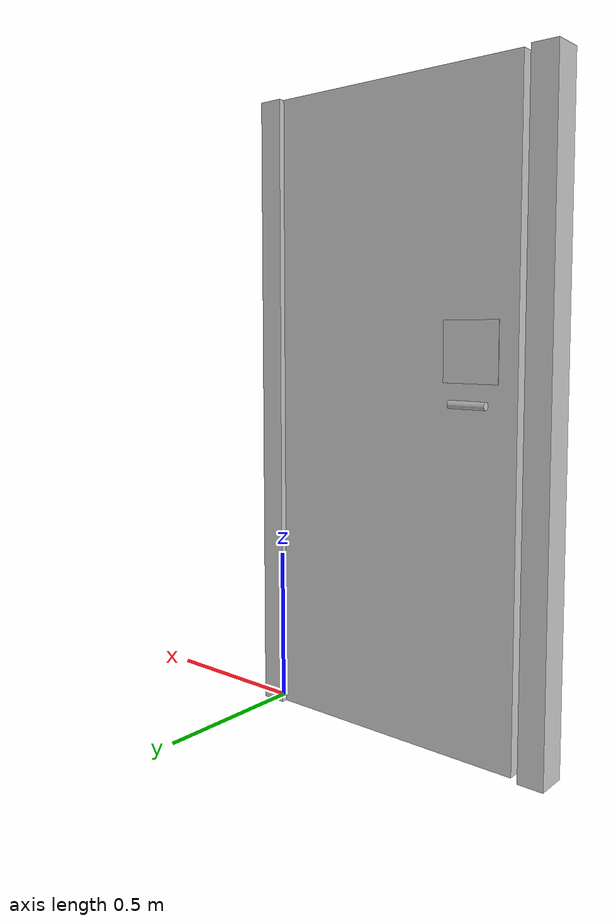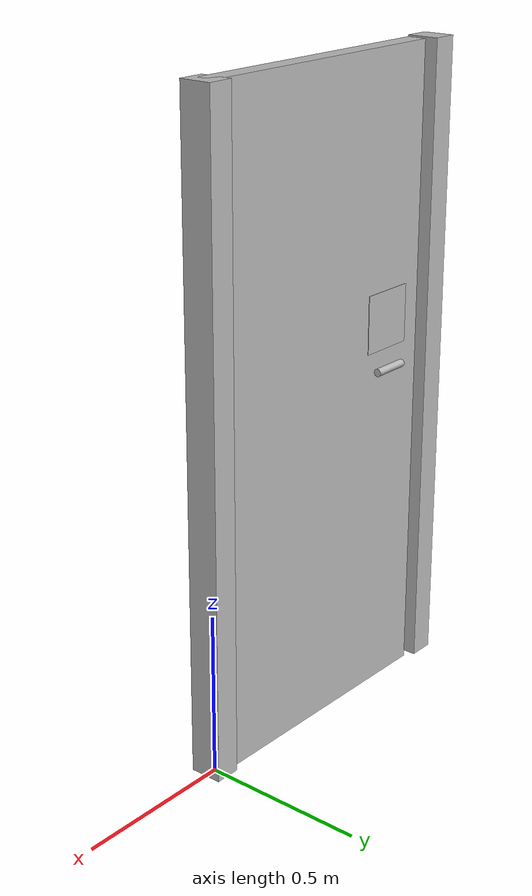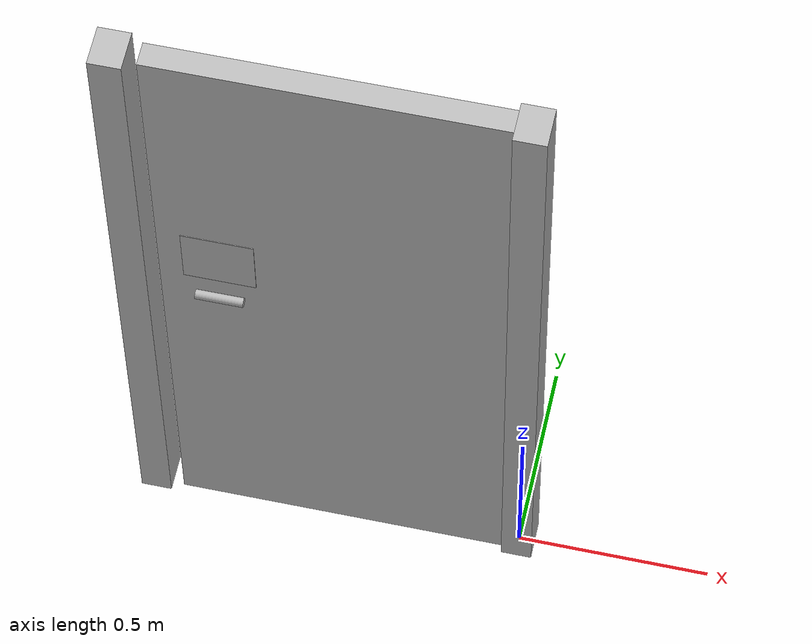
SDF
<?xml version="1.0" ?>
<sdf version="1.6">
  <model name="hinged_door_left">
    <static>false</static>

    <self_collide>false</self_collide>

    <!-- Frame (hinge anchor)  -->
    <link name="frame">
      <pose>0 0 1 0 0 0</pose>

      <visual name="frame_visual">
        <geometry>
          <box><size>-0.08 0.10 2.0</size></box>
        </geometry>
      </visual>

      <collision name="frame_collision">
        <geometry>
          <box><size>-0.08 0.10 2.0</size></box>
        </geometry>
      </collision>

      <inertial>
        <mass>20.0</mass>
        <inertia>
          <ixx>1.0</ixx><iyy>1.0</iyy><izz>1.0</izz>
          <ixy>0</ixy><ixz>0</ixz><iyz>0</iyz>
        </inertia>
      </inertial>
    </link>

    <joint name="frame_to_world" type="fixed">
      <parent>world</parent>
      <child>frame</child>
    </joint>

    <!-- Door panel            -->
    <link name="door_panel">
      <pose>0 0 1.0 0 0 0</pose>

      <visual name="door_visual">
        <pose>-0.45 0 0 0 0 0</pose>
        <geometry>
          <box><size>-0.9 0.06 2.0</size></box>
        </geometry>
      </visual>

      <collision name="door_collision">
        <pose>-0.45 0 0 0 0 0</pose>
        <geometry>
          <box><size>-0.9 0.06 2.0</size></box>
        </geometry>

        <surface>
          <friction>
            <ode>
              <mu>0.5</mu>
              <mu2>0.5</mu2>
            </ode>
          </friction>
        </surface>
      </collision>

      <inertial>
        <pose>-0.45 0 0 0 0 0</pose>
        <mass>20.0</mass>
        <inertia>
          <ixx>2.0</ixx><iyy>2.0</iyy><izz>2.0</izz>
          <ixy>0</ixy><ixz>0</ixz><iyz>0</iyz>
        </inertia>
      </inertial>
    </link>

    <!-- Hinge joint           -->
    <joint name="hinge" type="revolute">
      <parent>frame</parent>
      <child>door_panel</child>
      <pose>0 0 0 0 0 0</pose>
      <axis>
        <xyz>0 0 1</xyz>
        <limit>
          <lower>-1.57</lower>
          <upper>0.0</upper>
          <effort>200</effort>
          <velocity>2.0</velocity>
        </limit>
        <dynamics>
          <damping>0.05</damping>
          <friction>0.0</friction>
        </dynamics>
      </axis>
    </joint>

    <!-- Handles (both sides)  -->

    <!-- Front handle -->
    <link name="handle_front">
      <pose>-0.75 0.045 1.050 0 1.5707963 0</pose>

      <collision name="handle_front_collision">
        <geometry>
          <cylinder><radius>0.012</radius><length>-0.12</length></cylinder>
        </geometry>
      </collision>

      <visual name="handle_front_visual">
        <geometry>
          <cylinder><radius>0.012</radius><length>-0.12</length></cylinder>
        </geometry>
      </visual>

      <inertial>
        <mass>0.5</mass>
        <inertia>
          <ixx>0.001</ixx><iyy>0.001</iyy><izz>0.001</izz>
          <ixy>0</ixy><ixz>0</ixz><iyz>0</iyz>
        </inertia>
      </inertial>
    </link>

    <joint name="handle_front_fixed" type="fixed">
      <parent>door_panel</parent>
      <child>handle_front</child>
    </joint>

    <!-- Back handle -->
    <link name="handle_back">
      <pose>-0.75 -0.045 1.050 0 1.5707963 0</pose>

      <collision name="handle_back_collision">
        <geometry>
          <cylinder><radius>0.012</radius><length>-0.12</length></cylinder>
        </geometry>
      </collision>

      <visual name="handle_back_visual">
        <geometry>
          <cylinder><radius>0.012</radius><length>-0.12</length></cylinder>
        </geometry>
      </visual>

      <inertial>
        <mass>0.5</mass>
        <inertia>
          <ixx>0.001</ixx><iyy>0.001</iyy><izz>0.001</izz>
          <ixy>0</ixy><ixz>0</ixz><iyz>0</iyz>
        </inertia>
      </inertial>
    </link>

    <joint name="handle_back_fixed" type="fixed">
      <parent>door_panel</parent>
      <child>handle_back</child>
    </joint>

    <!-- AprilTag plates (both)-->

    <!-- Tag on the front: apriltag_plate_0 -->
    <include>
      <uri>model://apriltag_plate_2</uri>
      <pose>-0.75 0.031 1.20 0 3.1415926 0</pose>
      <name>tag_front_model</name>
    </include>

    <joint name="tag_front_fixed" type="fixed">
      <parent>door_panel</parent>
      <child>tag_front_model::tag_link</child>
    </joint>

    <!-- Tag on the back: apriltag_plate_1 -->
    <include>
      <uri>model://apriltag_plate_3</uri>
      <pose>-0.75 -0.031 1.20 0 0 0</pose>
      <name>tag_back_model</name>
    </include>

    <joint name="tag_back_fixed" type="fixed">
      <parent>door_panel</parent>
      <child>tag_back_model::tag_link</child>
    </joint>

    <!-- Second Frame (far end)-->
    <link name="frame_far">
      <pose>-0.97 0 1 0 0 0</pose>

      <visual name="frame_far_visual">
        <geometry>
          <box><size>-0.08 0.10 2.0</size></box>
        </geometry>
      </visual>

      <collision name="frame_far_collision">
        <geometry>
          <box><size>-0.08 0.10 2.0</size></box>
        </geometry>
      </collision>

      <inertial>
        <mass>20.0</mass>
        <inertia>
          <ixx>1.0</ixx><iyy>1.0</iyy><izz>1.0</izz>
          <ixy>0</ixy><ixz>0</ixz><iyz>0</iyz>
        </inertia>
      </inertial>
    </link>

    <joint name="frame_far_to_world" type="fixed">
      <parent>world</parent>
      <child>frame_far</child>
    </joint>

  </model>
</sdf>

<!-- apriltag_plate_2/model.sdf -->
<sdf version="1.6">
  <model name="apriltag_plate_2">
    <static>true</static>

    <link name="tag_link">
      <visual name="tag_visual">
        <geometry>
          <box>
            <size>0.18 0.002 0.18</size>
          </box>
        </geometry>

        <material>
          <script>
            <uri>model://apriltag_plate_2/materials/scripts</uri>
            <uri>model://apriltag_plate_2/materials/textures</uri>
            <name>Apriltag/Tag2</name>
          </script>
        </material>

        <cast_shadows>false</cast_shadows>
      </visual>

      <collision name="tag_collision">
        <geometry>
          <box><size>0.18 0.002 0.18</size></box>
        </geometry>
      </collision>
    </link>
  </model>
</sdf>

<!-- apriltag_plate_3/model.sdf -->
<sdf version="1.6">
  <model name="apriltag_plate_3">
    <static>true</static>

    <link name="tag_link">
      <visual name="tag_visual">
        <geometry>
          <box>
            <size>0.18 0.002 0.18</size>
          </box>
        </geometry>

        <material>
          <script>
            <uri>model://apriltag_plate_3/materials/scripts</uri>
            <uri>model://apriltag_plate_3/materials/textures</uri>
            <name>Apriltag/Tag3</name>
          </script>
        </material>

        <cast_shadows>false</cast_shadows>
      </visual>

      <collision name="tag_collision">
        <geometry>
          <box><size>0.18 0.002 0.18</size></box>
        </geometry>
      </collision>
    </link>
  </model>
</sdf>
